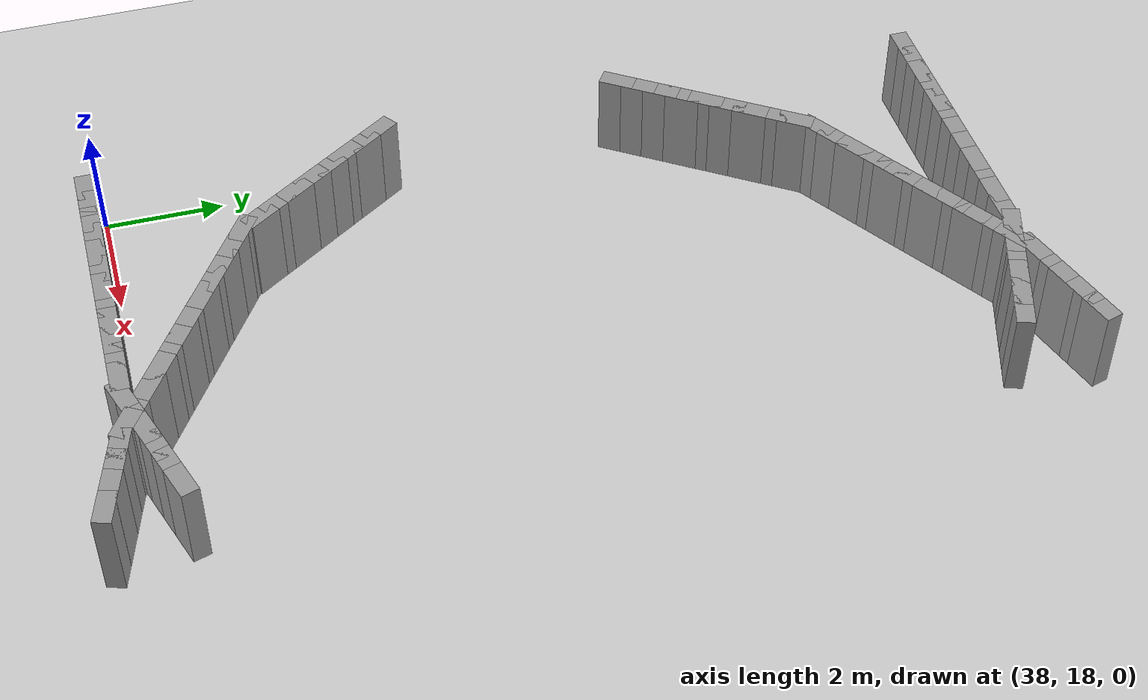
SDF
<sdf version="1.5">
 <world name="test_variable_width">
  <include><uri>model://sun</uri></include>
  <include><uri>model://ground_plane</uri></include>
  <model name="curbL_42">
   <static>true</static>
   <pose>38.609 17.791 0.750 0 0 0.000</pose>
   <link name="link">
    <collision name="col"><geometry><box><size>0.600 0.300 1.500</size></box></geometry></collision>
    <visual name="vis">
     <geometry><box><size>0.600 0.300 1.500</size></box></geometry>
     <material><ambient>0.6 0.6 0.6 1</ambient><diffuse>0.6 0.6 0.6 1</diffuse></material>
    </visual>
   </link>
  </model>
  <model name="curbL_43">
   <static>true</static>
   <pose>39.009 17.791 0.750 0 0 0.000</pose>
   <link name="link">
    <collision name="col"><geometry><box><size>0.600 0.300 1.500</size></box></geometry></collision>
    <visual name="vis">
     <geometry><box><size>0.600 0.300 1.500</size></box></geometry>
     <material><ambient>0.6 0.6 0.6 1</ambient><diffuse>0.6 0.6 0.6 1</diffuse></material>
    </visual>
   </link>
  </model>
  <model name="curbL_44">
   <static>true</static>
   <pose>39.409 17.791 0.750 0 0 0.000</pose>
   <link name="link">
    <collision name="col"><geometry><box><size>0.600 0.300 1.500</size></box></geometry></collision>
    <visual name="vis">
     <geometry><box><size>0.600 0.300 1.500</size></box></geometry>
     <material><ambient>0.6 0.6 0.6 1</ambient><diffuse>0.6 0.6 0.6 1</diffuse></material>
    </visual>
   </link>
  </model>
  <model name="curbL_45">
   <static>true</static>
   <pose>39.809 17.791 0.750 0 0 0.000</pose>
   <link name="link">
    <collision name="col"><geometry><box><size>0.600 0.300 1.500</size></box></geometry></collision>
    <visual name="vis">
     <geometry><box><size>0.600 0.300 1.500</size></box></geometry>
     <material><ambient>0.6 0.6 0.6 1</ambient><diffuse>0.6 0.6 0.6 1</diffuse></material>
    </visual>
   </link>
  </model>
  <model name="curbL_46">
   <static>true</static>
   <pose>40.209 17.791 0.750 0 0 0.000</pose>
   <link name="link">
    <collision name="col"><geometry><box><size>0.600 0.300 1.500</size></box></geometry></collision>
    <visual name="vis">
     <geometry><box><size>0.600 0.300 1.500</size></box></geometry>
     <material><ambient>0.6 0.6 0.6 1</ambient><diffuse>0.6 0.6 0.6 1</diffuse></material>
    </visual>
   </link>
  </model>
  <model name="curbL_47">
   <static>true</static>
   <pose>40.609 17.791 0.750 0 0 0.000</pose>
   <link name="link">
    <collision name="col"><geometry><box><size>0.600 0.300 1.500</size></box></geometry></collision>
    <visual name="vis">
     <geometry><box><size>0.600 0.300 1.500</size></box></geometry>
     <material><ambient>0.6 0.6 0.6 1</ambient><diffuse>0.6 0.6 0.6 1</diffuse></material>
    </visual>
   </link>
  </model>
  <model name="curbL_48">
   <static>true</static>
   <pose>41.009 17.791 0.750 0 0 0.000</pose>
   <link name="link">
    <collision name="col"><geometry><box><size>0.600 0.300 1.500</size></box></geometry></collision>
    <visual name="vis">
     <geometry><box><size>0.600 0.300 1.500</size></box></geometry>
     <material><ambient>0.6 0.6 0.6 1</ambient><diffuse>0.6 0.6 0.6 1</diffuse></material>
    </visual>
   </link>
  </model>
  <model name="curbL_49">
   <static>true</static>
   <pose>41.409 17.791 0.750 0 0 0.000</pose>
   <link name="link">
    <collision name="col"><geometry><box><size>0.600 0.300 1.500</size></box></geometry></collision>
    <visual name="vis">
     <geometry><box><size>0.600 0.300 1.500</size></box></geometry>
     <material><ambient>0.6 0.6 0.6 1</ambient><diffuse>0.6 0.6 0.6 1</diffuse></material>
    </visual>
   </link>
  </model>
  <model name="curbL_50">
   <static>true</static>
   <pose>41.809 17.791 0.750 0 0 0.000</pose>
   <link name="link">
    <collision name="col"><geometry><box><size>0.600 0.300 1.500</size></box></geometry></collision>
    <visual name="vis">
     <geometry><box><size>0.600 0.300 1.500</size></box></geometry>
     <material><ambient>0.6 0.6 0.6 1</ambient><diffuse>0.6 0.6 0.6 1</diffuse></material>
    </visual>
   </link>
  </model>
  <model name="curbL_51">
   <static>true</static>
   <pose>42.209 17.791 0.750 0 0 0.000</pose>
   <link name="link">
    <collision name="col"><geometry><box><size>0.600 0.300 1.500</size></box></geometry></collision>
    <visual name="vis">
     <geometry><box><size>0.600 0.300 1.500</size></box></geometry>
     <material><ambient>0.6 0.6 0.6 1</ambient><diffuse>0.6 0.6 0.6 1</diffuse></material>
    </visual>
   </link>
  </model>
  <model name="curbL_52">
   <static>true</static>
   <pose>42.609 17.791 0.750 0 0 0.000</pose>
   <link name="link">
    <collision name="col"><geometry><box><size>0.600 0.300 1.500</size></box></geometry></collision>
    <visual name="vis">
     <geometry><box><size>0.600 0.300 1.500</size></box></geometry>
     <material><ambient>0.6 0.6 0.6 1</ambient><diffuse>0.6 0.6 0.6 1</diffuse></material>
    </visual>
   </link>
  </model>
  <model name="curbL_53">
   <static>true</static>
   <pose>43.009 17.791 0.750 0 0 0.000</pose>
   <link name="link">
    <collision name="col"><geometry><box><size>0.600 0.300 1.500</size></box></geometry></collision>
    <visual name="vis">
     <geometry><box><size>0.600 0.300 1.500</size></box></geometry>
     <material><ambient>0.6 0.6 0.6 1</ambient><diffuse>0.6 0.6 0.6 1</diffuse></material>
    </visual>
   </link>
  </model>
  <model name="curbL_54">
   <static>true</static>
   <pose>43.408 17.796 0.750 0 0 0.316</pose>
   <link name="link">
    <collision name="col"><geometry><box><size>0.600 0.300 1.500</size></box></geometry></collision>
    <visual name="vis">
     <geometry><box><size>0.600 0.300 1.500</size></box></geometry>
     <material><ambient>0.6 0.6 0.6 1</ambient><diffuse>0.6 0.6 0.6 1</diffuse></material>
    </visual>
   </link>
  </model>
  <model name="curbL_55">
   <static>true</static>
   <pose>43.788 17.920 0.750 0 0 0.316</pose>
   <link name="link">
    <collision name="col"><geometry><box><size>0.600 0.300 1.500</size></box></geometry></collision>
    <visual name="vis">
     <geometry><box><size>0.600 0.300 1.500</size></box></geometry>
     <material><ambient>0.6 0.6 0.6 1</ambient><diffuse>0.6 0.6 0.6 1</diffuse></material>
    </visual>
   </link>
  </model>
  <model name="curbL_56">
   <static>true</static>
   <pose>44.169 18.045 0.750 0 0 0.316</pose>
   <link name="link">
    <collision name="col"><geometry><box><size>0.600 0.300 1.500</size></box></geometry></collision>
    <visual name="vis">
     <geometry><box><size>0.600 0.300 1.500</size></box></geometry>
     <material><ambient>0.6 0.6 0.6 1</ambient><diffuse>0.6 0.6 0.6 1</diffuse></material>
    </visual>
   </link>
  </model>
  <model name="curbL_57">
   <static>true</static>
   <pose>44.549 18.169 0.750 0 0 0.316</pose>
   <link name="link">
    <collision name="col"><geometry><box><size>0.600 0.300 1.500</size></box></geometry></collision>
    <visual name="vis">
     <geometry><box><size>0.600 0.300 1.500</size></box></geometry>
     <material><ambient>0.6 0.6 0.6 1</ambient><diffuse>0.6 0.6 0.6 1</diffuse></material>
    </visual>
   </link>
  </model>
  <model name="curbL_58">
   <static>true</static>
   <pose>44.929 18.293 0.750 0 0 0.316</pose>
   <link name="link">
    <collision name="col"><geometry><box><size>0.600 0.300 1.500</size></box></geometry></collision>
    <visual name="vis">
     <geometry><box><size>0.600 0.300 1.500</size></box></geometry>
     <material><ambient>0.6 0.6 0.6 1</ambient><diffuse>0.6 0.6 0.6 1</diffuse></material>
    </visual>
   </link>
  </model>
  <model name="curbL_59">
   <static>true</static>
   <pose>45.309 18.417 0.750 0 0 0.316</pose>
   <link name="link">
    <collision name="col"><geometry><box><size>0.600 0.300 1.500</size></box></geometry></collision>
    <visual name="vis">
     <geometry><box><size>0.600 0.300 1.500</size></box></geometry>
     <material><ambient>0.6 0.6 0.6 1</ambient><diffuse>0.6 0.6 0.6 1</diffuse></material>
    </visual>
   </link>
  </model>
  <model name="curbL_113">
   <static>true</static>
   <pose>45.394 31.555 0.750 0 0 2.826</pose>
   <link name="link">
    <collision name="col"><geometry><box><size>0.600 0.300 1.500</size></box></geometry></collision>
    <visual name="vis">
     <geometry><box><size>0.600 0.300 1.500</size></box></geometry>
     <material><ambient>0.6 0.6 0.6 1</ambient><diffuse>0.6 0.6 0.6 1</diffuse></material>
    </visual>
   </link>
  </model>
  <model name="curbL_114">
   <static>true</static>
   <pose>45.014 31.679 0.750 0 0 2.826</pose>
   <link name="link">
    <collision name="col"><geometry><box><size>0.600 0.300 1.500</size></box></geometry></collision>
    <visual name="vis">
     <geometry><box><size>0.600 0.300 1.500</size></box></geometry>
     <material><ambient>0.6 0.6 0.6 1</ambient><diffuse>0.6 0.6 0.6 1</diffuse></material>
    </visual>
   </link>
  </model>
  <model name="curbL_115">
   <static>true</static>
   <pose>44.633 31.803 0.750 0 0 2.826</pose>
   <link name="link">
    <collision name="col"><geometry><box><size>0.600 0.300 1.500</size></box></geometry></collision>
    <visual name="vis">
     <geometry><box><size>0.600 0.300 1.500</size></box></geometry>
     <material><ambient>0.6 0.6 0.6 1</ambient><diffuse>0.6 0.6 0.6 1</diffuse></material>
    </visual>
   </link>
  </model>
  <model name="curbL_116">
   <static>true</static>
   <pose>44.253 31.928 0.750 0 0 2.826</pose>
   <link name="link">
    <collision name="col"><geometry><box><size>0.600 0.300 1.500</size></box></geometry></collision>
    <visual name="vis">
     <geometry><box><size>0.600 0.300 1.500</size></box></geometry>
     <material><ambient>0.6 0.6 0.6 1</ambient><diffuse>0.6 0.6 0.6 1</diffuse></material>
    </visual>
   </link>
  </model>
  <model name="curbL_117">
   <static>true</static>
   <pose>43.873 32.052 0.750 0 0 2.826</pose>
   <link name="link">
    <collision name="col"><geometry><box><size>0.600 0.300 1.500</size></box></geometry></collision>
    <visual name="vis">
     <geometry><box><size>0.600 0.300 1.500</size></box></geometry>
     <material><ambient>0.6 0.6 0.6 1</ambient><diffuse>0.6 0.6 0.6 1</diffuse></material>
    </visual>
   </link>
  </model>
  <model name="curbL_118">
   <static>true</static>
   <pose>43.493 32.176 0.750 0 0 2.826</pose>
   <link name="link">
    <collision name="col"><geometry><box><size>0.600 0.300 1.500</size></box></geometry></collision>
    <visual name="vis">
     <geometry><box><size>0.600 0.300 1.500</size></box></geometry>
     <material><ambient>0.6 0.6 0.6 1</ambient><diffuse>0.6 0.6 0.6 1</diffuse></material>
    </visual>
   </link>
  </model>
  <model name="curbL_119">
   <static>true</static>
   <pose>43.098 32.209 0.750 0 0 3.142</pose>
   <link name="link">
    <collision name="col"><geometry><box><size>0.600 0.300 1.500</size></box></geometry></collision>
    <visual name="vis">
     <geometry><box><size>0.600 0.300 1.500</size></box></geometry>
     <material><ambient>0.6 0.6 0.6 1</ambient><diffuse>0.6 0.6 0.6 1</diffuse></material>
    </visual>
   </link>
  </model>
  <model name="curbL_120">
   <static>true</static>
   <pose>42.698 32.209 0.750 0 0 3.142</pose>
   <link name="link">
    <collision name="col"><geometry><box><size>0.600 0.300 1.500</size></box></geometry></collision>
    <visual name="vis">
     <geometry><box><size>0.600 0.300 1.500</size></box></geometry>
     <material><ambient>0.6 0.6 0.6 1</ambient><diffuse>0.6 0.6 0.6 1</diffuse></material>
    </visual>
   </link>
  </model>
  <model name="curbL_121">
   <static>true</static>
   <pose>42.298 32.209 0.750 0 0 3.142</pose>
   <link name="link">
    <collision name="col"><geometry><box><size>0.600 0.300 1.500</size></box></geometry></collision>
    <visual name="vis">
     <geometry><box><size>0.600 0.300 1.500</size></box></geometry>
     <material><ambient>0.6 0.6 0.6 1</ambient><diffuse>0.6 0.6 0.6 1</diffuse></material>
    </visual>
   </link>
  </model>
  <model name="curbL_122">
   <static>true</static>
   <pose>41.898 32.209 0.750 0 0 3.142</pose>
   <link name="link">
    <collision name="col"><geometry><box><size>0.600 0.300 1.500</size></box></geometry></collision>
    <visual name="vis">
     <geometry><box><size>0.600 0.300 1.500</size></box></geometry>
     <material><ambient>0.6 0.6 0.6 1</ambient><diffuse>0.6 0.6 0.6 1</diffuse></material>
    </visual>
   </link>
  </model>
  <model name="curbL_123">
   <static>true</static>
   <pose>41.498 32.209 0.750 0 0 3.142</pose>
   <link name="link">
    <collision name="col"><geometry><box><size>0.600 0.300 1.500</size></box></geometry></collision>
    <visual name="vis">
     <geometry><box><size>0.600 0.300 1.500</size></box></geometry>
     <material><ambient>0.6 0.6 0.6 1</ambient><diffuse>0.6 0.6 0.6 1</diffuse></material>
    </visual>
   </link>
  </model>
  <model name="curbL_124">
   <static>true</static>
   <pose>41.098 32.209 0.750 0 0 3.142</pose>
   <link name="link">
    <collision name="col"><geometry><box><size>0.600 0.300 1.500</size></box></geometry></collision>
    <visual name="vis">
     <geometry><box><size>0.600 0.300 1.500</size></box></geometry>
     <material><ambient>0.6 0.6 0.6 1</ambient><diffuse>0.6 0.6 0.6 1</diffuse></material>
    </visual>
   </link>
  </model>
  <model name="curbL_125">
   <static>true</static>
   <pose>40.698 32.209 0.750 0 0 3.142</pose>
   <link name="link">
    <collision name="col"><geometry><box><size>0.600 0.300 1.500</size></box></geometry></collision>
    <visual name="vis">
     <geometry><box><size>0.600 0.300 1.500</size></box></geometry>
     <material><ambient>0.6 0.6 0.6 1</ambient><diffuse>0.6 0.6 0.6 1</diffuse></material>
    </visual>
   </link>
  </model>
  <model name="curbL_126">
   <static>true</static>
   <pose>40.298 32.209 0.750 0 0 3.142</pose>
   <link name="link">
    <collision name="col"><geometry><box><size>0.600 0.300 1.500</size></box></geometry></collision>
    <visual name="vis">
     <geometry><box><size>0.600 0.300 1.500</size></box></geometry>
     <material><ambient>0.6 0.6 0.6 1</ambient><diffuse>0.6 0.6 0.6 1</diffuse></material>
    </visual>
   </link>
  </model>
  <model name="curbL_127">
   <static>true</static>
   <pose>39.898 32.209 0.750 0 0 3.142</pose>
   <link name="link">
    <collision name="col"><geometry><box><size>0.600 0.300 1.500</size></box></geometry></collision>
    <visual name="vis">
     <geometry><box><size>0.600 0.300 1.500</size></box></geometry>
     <material><ambient>0.6 0.6 0.6 1</ambient><diffuse>0.6 0.6 0.6 1</diffuse></material>
    </visual>
   </link>
  </model>
  <model name="curbL_128">
   <static>true</static>
   <pose>39.498 32.209 0.750 0 0 3.142</pose>
   <link name="link">
    <collision name="col"><geometry><box><size>0.600 0.300 1.500</size></box></geometry></collision>
    <visual name="vis">
     <geometry><box><size>0.600 0.300 1.500</size></box></geometry>
     <material><ambient>0.6 0.6 0.6 1</ambient><diffuse>0.6 0.6 0.6 1</diffuse></material>
    </visual>
   </link>
  </model>
  <model name="curbL_129">
   <static>true</static>
   <pose>39.098 32.209 0.750 0 0 3.142</pose>
   <link name="link">
    <collision name="col"><geometry><box><size>0.600 0.300 1.500</size></box></geometry></collision>
    <visual name="vis">
     <geometry><box><size>0.600 0.300 1.500</size></box></geometry>
     <material><ambient>0.6 0.6 0.6 1</ambient><diffuse>0.6 0.6 0.6 1</diffuse></material>
    </visual>
   </link>
  </model>
  <model name="curbL_130">
   <static>true</static>
   <pose>38.698 32.209 0.750 0 0 3.142</pose>
   <link name="link">
    <collision name="col"><geometry><box><size>0.600 0.300 1.500</size></box></geometry></collision>
    <visual name="vis">
     <geometry><box><size>0.600 0.300 1.500</size></box></geometry>
     <material><ambient>0.6 0.6 0.6 1</ambient><diffuse>0.6 0.6 0.6 1</diffuse></material>
    </visual>
   </link>
  </model>
  <model name="curbR_1">
   <static>true</static>
   <pose>38.306 27.036 0.750 0 0 0.965</pose>
   <link name="link">
    <collision name="col"><geometry><box><size>0.600 0.300 1.500</size></box></geometry></collision>
    <visual name="vis">
     <geometry><box><size>0.600 0.300 1.500</size></box></geometry>
     <material><ambient>0.6 0.6 0.6 1</ambient><diffuse>0.6 0.6 0.6 1</diffuse></material>
    </visual>
   </link>
  </model>
  <model name="curbR_2">
   <static>true</static>
   <pose>38.534 27.365 0.750 0 0 0.965</pose>
   <link name="link">
    <collision name="col"><geometry><box><size>0.600 0.300 1.500</size></box></geometry></collision>
    <visual name="vis">
     <geometry><box><size>0.600 0.300 1.500</size></box></geometry>
     <material><ambient>0.6 0.6 0.6 1</ambient><diffuse>0.6 0.6 0.6 1</diffuse></material>
    </visual>
   </link>
  </model>
  <model name="curbR_3">
   <static>true</static>
   <pose>38.762 27.694 0.750 0 0 0.965</pose>
   <link name="link">
    <collision name="col"><geometry><box><size>0.600 0.300 1.500</size></box></geometry></collision>
    <visual name="vis">
     <geometry><box><size>0.600 0.300 1.500</size></box></geometry>
     <material><ambient>0.6 0.6 0.6 1</ambient><diffuse>0.6 0.6 0.6 1</diffuse></material>
    </visual>
   </link>
  </model>
  <model name="curbR_4">
   <static>true</static>
   <pose>38.990 28.023 0.750 0 0 0.965</pose>
   <link name="link">
    <collision name="col"><geometry><box><size>0.600 0.300 1.500</size></box></geometry></collision>
    <visual name="vis">
     <geometry><box><size>0.600 0.300 1.500</size></box></geometry>
     <material><ambient>0.6 0.6 0.6 1</ambient><diffuse>0.6 0.6 0.6 1</diffuse></material>
    </visual>
   </link>
  </model>
  <model name="curbR_5">
   <static>true</static>
   <pose>39.217 28.352 0.750 0 0 0.965</pose>
   <link name="link">
    <collision name="col"><geometry><box><size>0.600 0.300 1.500</size></box></geometry></collision>
    <visual name="vis">
     <geometry><box><size>0.600 0.300 1.500</size></box></geometry>
     <material><ambient>0.6 0.6 0.6 1</ambient><diffuse>0.6 0.6 0.6 1</diffuse></material>
    </visual>
   </link>
  </model>
  <model name="curbR_6">
   <static>true</static>
   <pose>39.445 28.681 0.750 0 0 0.965</pose>
   <link name="link">
    <collision name="col"><geometry><box><size>0.600 0.300 1.500</size></box></geometry></collision>
    <visual name="vis">
     <geometry><box><size>0.600 0.300 1.500</size></box></geometry>
     <material><ambient>0.6 0.6 0.6 1</ambient><diffuse>0.6 0.6 0.6 1</diffuse></material>
    </visual>
   </link>
  </model>
  <model name="curbR_7">
   <static>true</static>
   <pose>39.673 29.010 0.750 0 0 0.965</pose>
   <link name="link">
    <collision name="col"><geometry><box><size>0.600 0.300 1.500</size></box></geometry></collision>
    <visual name="vis">
     <geometry><box><size>0.600 0.300 1.500</size></box></geometry>
     <material><ambient>0.6 0.6 0.6 1</ambient><diffuse>0.6 0.6 0.6 1</diffuse></material>
    </visual>
   </link>
  </model>
  <model name="curbR_8">
   <static>true</static>
   <pose>39.900 29.339 0.750 0 0 0.965</pose>
   <link name="link">
    <collision name="col"><geometry><box><size>0.600 0.300 1.500</size></box></geometry></collision>
    <visual name="vis">
     <geometry><box><size>0.600 0.300 1.500</size></box></geometry>
     <material><ambient>0.6 0.6 0.6 1</ambient><diffuse>0.6 0.6 0.6 1</diffuse></material>
    </visual>
   </link>
  </model>
  <model name="curbR_9">
   <static>true</static>
   <pose>40.128 29.668 0.750 0 0 0.965</pose>
   <link name="link">
    <collision name="col"><geometry><box><size>0.600 0.300 1.500</size></box></geometry></collision>
    <visual name="vis">
     <geometry><box><size>0.600 0.300 1.500</size></box></geometry>
     <material><ambient>0.6 0.6 0.6 1</ambient><diffuse>0.6 0.6 0.6 1</diffuse></material>
    </visual>
   </link>
  </model>
  <model name="curbR_10">
   <static>true</static>
   <pose>40.399 29.951 0.750 0 0 0.562</pose>
   <link name="link">
    <collision name="col"><geometry><box><size>0.600 0.300 1.500</size></box></geometry></collision>
    <visual name="vis">
     <geometry><box><size>0.600 0.300 1.500</size></box></geometry>
     <material><ambient>0.6 0.6 0.6 1</ambient><diffuse>0.6 0.6 0.6 1</diffuse></material>
    </visual>
   </link>
  </model>
  <model name="curbR_11">
   <static>true</static>
   <pose>40.738 30.164 0.750 0 0 0.562</pose>
   <link name="link">
    <collision name="col"><geometry><box><size>0.600 0.300 1.500</size></box></geometry></collision>
    <visual name="vis">
     <geometry><box><size>0.600 0.300 1.500</size></box></geometry>
     <material><ambient>0.6 0.6 0.6 1</ambient><diffuse>0.6 0.6 0.6 1</diffuse></material>
    </visual>
   </link>
  </model>
  <model name="curbR_12">
   <static>true</static>
   <pose>41.077 30.377 0.750 0 0 0.562</pose>
   <link name="link">
    <collision name="col"><geometry><box><size>0.600 0.300 1.500</size></box></geometry></collision>
    <visual name="vis">
     <geometry><box><size>0.600 0.300 1.500</size></box></geometry>
     <material><ambient>0.6 0.6 0.6 1</ambient><diffuse>0.6 0.6 0.6 1</diffuse></material>
    </visual>
   </link>
  </model>
  <model name="curbR_13">
   <static>true</static>
   <pose>41.415 30.590 0.750 0 0 0.562</pose>
   <link name="link">
    <collision name="col"><geometry><box><size>0.600 0.300 1.500</size></box></geometry></collision>
    <visual name="vis">
     <geometry><box><size>0.600 0.300 1.500</size></box></geometry>
     <material><ambient>0.6 0.6 0.6 1</ambient><diffuse>0.6 0.6 0.6 1</diffuse></material>
    </visual>
   </link>
  </model>
  <model name="curbR_14">
   <static>true</static>
   <pose>41.754 30.803 0.750 0 0 0.562</pose>
   <link name="link">
    <collision name="col"><geometry><box><size>0.600 0.300 1.500</size></box></geometry></collision>
    <visual name="vis">
     <geometry><box><size>0.600 0.300 1.500</size></box></geometry>
     <material><ambient>0.6 0.6 0.6 1</ambient><diffuse>0.6 0.6 0.6 1</diffuse></material>
    </visual>
   </link>
  </model>
  <model name="curbR_15">
   <static>true</static>
   <pose>42.092 31.016 0.750 0 0 0.562</pose>
   <link name="link">
    <collision name="col"><geometry><box><size>0.600 0.300 1.500</size></box></geometry></collision>
    <visual name="vis">
     <geometry><box><size>0.600 0.300 1.500</size></box></geometry>
     <material><ambient>0.6 0.6 0.6 1</ambient><diffuse>0.6 0.6 0.6 1</diffuse></material>
    </visual>
   </link>
  </model>
  <model name="curbR_16">
   <static>true</static>
   <pose>42.431 31.229 0.750 0 0 0.562</pose>
   <link name="link">
    <collision name="col"><geometry><box><size>0.600 0.300 1.500</size></box></geometry></collision>
    <visual name="vis">
     <geometry><box><size>0.600 0.300 1.500</size></box></geometry>
     <material><ambient>0.6 0.6 0.6 1</ambient><diffuse>0.6 0.6 0.6 1</diffuse></material>
    </visual>
   </link>
  </model>
  <model name="curbR_17">
   <static>true</static>
   <pose>42.769 31.442 0.750 0 0 0.562</pose>
   <link name="link">
    <collision name="col"><geometry><box><size>0.600 0.300 1.500</size></box></geometry></collision>
    <visual name="vis">
     <geometry><box><size>0.600 0.300 1.500</size></box></geometry>
     <material><ambient>0.6 0.6 0.6 1</ambient><diffuse>0.6 0.6 0.6 1</diffuse></material>
    </visual>
   </link>
  </model>
  <model name="curbR_18">
   <static>true</static>
   <pose>43.108 31.655 0.750 0 0 0.562</pose>
   <link name="link">
    <collision name="col"><geometry><box><size>0.600 0.300 1.500</size></box></geometry></collision>
    <visual name="vis">
     <geometry><box><size>0.600 0.300 1.500</size></box></geometry>
     <material><ambient>0.6 0.6 0.6 1</ambient><diffuse>0.6 0.6 0.6 1</diffuse></material>
    </visual>
   </link>
  </model>
  <model name="curbR_19">
   <static>true</static>
   <pose>43.446 31.868 0.750 0 0 0.562</pose>
   <link name="link">
    <collision name="col"><geometry><box><size>0.600 0.300 1.500</size></box></geometry></collision>
    <visual name="vis">
     <geometry><box><size>0.600 0.300 1.500</size></box></geometry>
     <material><ambient>0.6 0.6 0.6 1</ambient><diffuse>0.6 0.6 0.6 1</diffuse></material>
    </visual>
   </link>
  </model>
  <model name="curbR_20">
   <static>true</static>
   <pose>43.785 32.081 0.750 0 0 0.562</pose>
   <link name="link">
    <collision name="col"><geometry><box><size>0.600 0.300 1.500</size></box></geometry></collision>
    <visual name="vis">
     <geometry><box><size>0.600 0.300 1.500</size></box></geometry>
     <material><ambient>0.6 0.6 0.6 1</ambient><diffuse>0.6 0.6 0.6 1</diffuse></material>
    </visual>
   </link>
  </model>
  <model name="curbR_21">
   <static>true</static>
   <pose>44.125 32.291 0.750 0 0 0.290</pose>
   <link name="link">
    <collision name="col"><geometry><box><size>0.600 0.300 1.500</size></box></geometry></collision>
    <visual name="vis">
     <geometry><box><size>0.600 0.300 1.500</size></box></geometry>
     <material><ambient>0.6 0.6 0.6 1</ambient><diffuse>0.6 0.6 0.6 1</diffuse></material>
    </visual>
   </link>
  </model>
  <model name="curbR_22">
   <static>true</static>
   <pose>44.508 32.406 0.750 0 0 0.290</pose>
   <link name="link">
    <collision name="col"><geometry><box><size>0.600 0.300 1.500</size></box></geometry></collision>
    <visual name="vis">
     <geometry><box><size>0.600 0.300 1.500</size></box></geometry>
     <material><ambient>0.6 0.6 0.6 1</ambient><diffuse>0.6 0.6 0.6 1</diffuse></material>
    </visual>
   </link>
  </model>
  <model name="curbR_23">
   <static>true</static>
   <pose>44.891 32.520 0.750 0 0 0.290</pose>
   <link name="link">
    <collision name="col"><geometry><box><size>0.600 0.300 1.500</size></box></geometry></collision>
    <visual name="vis">
     <geometry><box><size>0.600 0.300 1.500</size></box></geometry>
     <material><ambient>0.6 0.6 0.6 1</ambient><diffuse>0.6 0.6 0.6 1</diffuse></material>
    </visual>
   </link>
  </model>
  <model name="curbR_24">
   <static>true</static>
   <pose>45.275 32.635 0.750 0 0 0.290</pose>
   <link name="link">
    <collision name="col"><geometry><box><size>0.600 0.300 1.500</size></box></geometry></collision>
    <visual name="vis">
     <geometry><box><size>0.600 0.300 1.500</size></box></geometry>
     <material><ambient>0.6 0.6 0.6 1</ambient><diffuse>0.6 0.6 0.6 1</diffuse></material>
    </visual>
   </link>
  </model>
  <model name="curbR_25">
   <static>true</static>
   <pose>45.658 32.749 0.750 0 0 0.290</pose>
   <link name="link">
    <collision name="col"><geometry><box><size>0.600 0.300 1.500</size></box></geometry></collision>
    <visual name="vis">
     <geometry><box><size>0.600 0.300 1.500</size></box></geometry>
     <material><ambient>0.6 0.6 0.6 1</ambient><diffuse>0.6 0.6 0.6 1</diffuse></material>
    </visual>
   </link>
  </model>
  <model name="curbR_143">
   <static>true</static>
   <pose>45.516 17.293 0.750 0 0 2.852</pose>
   <link name="link">
    <collision name="col"><geometry><box><size>0.600 0.300 1.500</size></box></geometry></collision>
    <visual name="vis">
     <geometry><box><size>0.600 0.300 1.500</size></box></geometry>
     <material><ambient>0.6 0.6 0.6 1</ambient><diffuse>0.6 0.6 0.6 1</diffuse></material>
    </visual>
   </link>
  </model>
  <model name="curbR_144">
   <static>true</static>
   <pose>45.133 17.408 0.750 0 0 2.852</pose>
   <link name="link">
    <collision name="col"><geometry><box><size>0.600 0.300 1.500</size></box></geometry></collision>
    <visual name="vis">
     <geometry><box><size>0.600 0.300 1.500</size></box></geometry>
     <material><ambient>0.6 0.6 0.6 1</ambient><diffuse>0.6 0.6 0.6 1</diffuse></material>
    </visual>
   </link>
  </model>
  <model name="curbR_145">
   <static>true</static>
   <pose>44.750 17.522 0.750 0 0 2.852</pose>
   <link name="link">
    <collision name="col"><geometry><box><size>0.600 0.300 1.500</size></box></geometry></collision>
    <visual name="vis">
     <geometry><box><size>0.600 0.300 1.500</size></box></geometry>
     <material><ambient>0.6 0.6 0.6 1</ambient><diffuse>0.6 0.6 0.6 1</diffuse></material>
    </visual>
   </link>
  </model>
  <model name="curbR_146">
   <static>true</static>
   <pose>44.367 17.636 0.750 0 0 2.852</pose>
   <link name="link">
    <collision name="col"><geometry><box><size>0.600 0.300 1.500</size></box></geometry></collision>
    <visual name="vis">
     <geometry><box><size>0.600 0.300 1.500</size></box></geometry>
     <material><ambient>0.6 0.6 0.6 1</ambient><diffuse>0.6 0.6 0.6 1</diffuse></material>
    </visual>
   </link>
  </model>
  <model name="curbR_147">
   <static>true</static>
   <pose>43.999 17.785 0.750 0 0 2.580</pose>
   <link name="link">
    <collision name="col"><geometry><box><size>0.600 0.300 1.500</size></box></geometry></collision>
    <visual name="vis">
     <geometry><box><size>0.600 0.300 1.500</size></box></geometry>
     <material><ambient>0.6 0.6 0.6 1</ambient><diffuse>0.6 0.6 0.6 1</diffuse></material>
    </visual>
   </link>
  </model>
  <model name="curbR_148">
   <static>true</static>
   <pose>43.660 17.998 0.750 0 0 2.580</pose>
   <link name="link">
    <collision name="col"><geometry><box><size>0.600 0.300 1.500</size></box></geometry></collision>
    <visual name="vis">
     <geometry><box><size>0.600 0.300 1.500</size></box></geometry>
     <material><ambient>0.6 0.6 0.6 1</ambient><diffuse>0.6 0.6 0.6 1</diffuse></material>
    </visual>
   </link>
  </model>
  <model name="curbR_149">
   <static>true</static>
   <pose>43.322 18.211 0.750 0 0 2.580</pose>
   <link name="link">
    <collision name="col"><geometry><box><size>0.600 0.300 1.500</size></box></geometry></collision>
    <visual name="vis">
     <geometry><box><size>0.600 0.300 1.500</size></box></geometry>
     <material><ambient>0.6 0.6 0.6 1</ambient><diffuse>0.6 0.6 0.6 1</diffuse></material>
    </visual>
   </link>
  </model>
  <model name="curbR_150">
   <static>true</static>
   <pose>42.983 18.424 0.750 0 0 2.580</pose>
   <link name="link">
    <collision name="col"><geometry><box><size>0.600 0.300 1.500</size></box></geometry></collision>
    <visual name="vis">
     <geometry><box><size>0.600 0.300 1.500</size></box></geometry>
     <material><ambient>0.6 0.6 0.6 1</ambient><diffuse>0.6 0.6 0.6 1</diffuse></material>
    </visual>
   </link>
  </model>
  <model name="curbR_151">
   <static>true</static>
   <pose>42.644 18.637 0.750 0 0 2.580</pose>
   <link name="link">
    <collision name="col"><geometry><box><size>0.600 0.300 1.500</size></box></geometry></collision>
    <visual name="vis">
     <geometry><box><size>0.600 0.300 1.500</size></box></geometry>
     <material><ambient>0.6 0.6 0.6 1</ambient><diffuse>0.6 0.6 0.6 1</diffuse></material>
    </visual>
   </link>
  </model>
  <model name="curbR_152">
   <static>true</static>
   <pose>42.306 18.850 0.750 0 0 2.580</pose>
   <link name="link">
    <collision name="col"><geometry><box><size>0.600 0.300 1.500</size></box></geometry></collision>
    <visual name="vis">
     <geometry><box><size>0.600 0.300 1.500</size></box></geometry>
     <material><ambient>0.6 0.6 0.6 1</ambient><diffuse>0.6 0.6 0.6 1</diffuse></material>
    </visual>
   </link>
  </model>
  <model name="curbR_153">
   <static>true</static>
   <pose>41.967 19.063 0.750 0 0 2.580</pose>
   <link name="link">
    <collision name="col"><geometry><box><size>0.600 0.300 1.500</size></box></geometry></collision>
    <visual name="vis">
     <geometry><box><size>0.600 0.300 1.500</size></box></geometry>
     <material><ambient>0.6 0.6 0.6 1</ambient><diffuse>0.6 0.6 0.6 1</diffuse></material>
    </visual>
   </link>
  </model>
  <model name="curbR_154">
   <static>true</static>
   <pose>41.629 19.276 0.750 0 0 2.580</pose>
   <link name="link">
    <collision name="col"><geometry><box><size>0.600 0.300 1.500</size></box></geometry></collision>
    <visual name="vis">
     <geometry><box><size>0.600 0.300 1.500</size></box></geometry>
     <material><ambient>0.6 0.6 0.6 1</ambient><diffuse>0.6 0.6 0.6 1</diffuse></material>
    </visual>
   </link>
  </model>
  <model name="curbR_155">
   <static>true</static>
   <pose>41.290 19.489 0.750 0 0 2.580</pose>
   <link name="link">
    <collision name="col"><geometry><box><size>0.600 0.300 1.500</size></box></geometry></collision>
    <visual name="vis">
     <geometry><box><size>0.600 0.300 1.500</size></box></geometry>
     <material><ambient>0.6 0.6 0.6 1</ambient><diffuse>0.6 0.6 0.6 1</diffuse></material>
    </visual>
   </link>
  </model>
  <model name="curbR_156">
   <static>true</static>
   <pose>40.952 19.702 0.750 0 0 2.580</pose>
   <link name="link">
    <collision name="col"><geometry><box><size>0.600 0.300 1.500</size></box></geometry></collision>
    <visual name="vis">
     <geometry><box><size>0.600 0.300 1.500</size></box></geometry>
     <material><ambient>0.6 0.6 0.6 1</ambient><diffuse>0.6 0.6 0.6 1</diffuse></material>
    </visual>
   </link>
  </model>
  <model name="curbR_157">
   <static>true</static>
   <pose>40.613 19.915 0.750 0 0 2.580</pose>
   <link name="link">
    <collision name="col"><geometry><box><size>0.600 0.300 1.500</size></box></geometry></collision>
    <visual name="vis">
     <geometry><box><size>0.600 0.300 1.500</size></box></geometry>
     <material><ambient>0.6 0.6 0.6 1</ambient><diffuse>0.6 0.6 0.6 1</diffuse></material>
    </visual>
   </link>
  </model>
  <model name="curbR_158">
   <static>true</static>
   <pose>40.274 20.128 0.750 0 0 2.580</pose>
   <link name="link">
    <collision name="col"><geometry><box><size>0.600 0.300 1.500</size></box></geometry></collision>
    <visual name="vis">
     <geometry><box><size>0.600 0.300 1.500</size></box></geometry>
     <material><ambient>0.6 0.6 0.6 1</ambient><diffuse>0.6 0.6 0.6 1</diffuse></material>
    </visual>
   </link>
  </model>
  <model name="curbR_159">
   <static>true</static>
   <pose>40.044 20.454 0.750 0 0 2.176</pose>
   <link name="link">
    <collision name="col"><geometry><box><size>0.600 0.300 1.500</size></box></geometry></collision>
    <visual name="vis">
     <geometry><box><size>0.600 0.300 1.500</size></box></geometry>
     <material><ambient>0.6 0.6 0.6 1</ambient><diffuse>0.6 0.6 0.6 1</diffuse></material>
    </visual>
   </link>
  </model>
  <model name="curbR_160">
   <static>true</static>
   <pose>39.816 20.783 0.750 0 0 2.176</pose>
   <link name="link">
    <collision name="col"><geometry><box><size>0.600 0.300 1.500</size></box></geometry></collision>
    <visual name="vis">
     <geometry><box><size>0.600 0.300 1.500</size></box></geometry>
     <material><ambient>0.6 0.6 0.6 1</ambient><diffuse>0.6 0.6 0.6 1</diffuse></material>
    </visual>
   </link>
  </model>
  <model name="curbR_161">
   <static>true</static>
   <pose>39.589 21.112 0.750 0 0 2.176</pose>
   <link name="link">
    <collision name="col"><geometry><box><size>0.600 0.300 1.500</size></box></geometry></collision>
    <visual name="vis">
     <geometry><box><size>0.600 0.300 1.500</size></box></geometry>
     <material><ambient>0.6 0.6 0.6 1</ambient><diffuse>0.6 0.6 0.6 1</diffuse></material>
    </visual>
   </link>
  </model>
  <model name="curbR_162">
   <static>true</static>
   <pose>39.361 21.441 0.750 0 0 2.176</pose>
   <link name="link">
    <collision name="col"><geometry><box><size>0.600 0.300 1.500</size></box></geometry></collision>
    <visual name="vis">
     <geometry><box><size>0.600 0.300 1.500</size></box></geometry>
     <material><ambient>0.6 0.6 0.6 1</ambient><diffuse>0.6 0.6 0.6 1</diffuse></material>
    </visual>
   </link>
  </model>
  <model name="curbR_163">
   <static>true</static>
   <pose>39.133 21.769 0.750 0 0 2.176</pose>
   <link name="link">
    <collision name="col"><geometry><box><size>0.600 0.300 1.500</size></box></geometry></collision>
    <visual name="vis">
     <geometry><box><size>0.600 0.300 1.500</size></box></geometry>
     <material><ambient>0.6 0.6 0.6 1</ambient><diffuse>0.6 0.6 0.6 1</diffuse></material>
    </visual>
   </link>
  </model>
  <model name="curbR_164">
   <static>true</static>
   <pose>38.905 22.098 0.750 0 0 2.176</pose>
   <link name="link">
    <collision name="col"><geometry><box><size>0.600 0.300 1.500</size></box></geometry></collision>
    <visual name="vis">
     <geometry><box><size>0.600 0.300 1.500</size></box></geometry>
     <material><ambient>0.6 0.6 0.6 1</ambient><diffuse>0.6 0.6 0.6 1</diffuse></material>
    </visual>
   </link>
  </model>
  <model name="curbR_165">
   <static>true</static>
   <pose>38.678 22.427 0.750 0 0 2.176</pose>
   <link name="link">
    <collision name="col"><geometry><box><size>0.600 0.300 1.500</size></box></geometry></collision>
    <visual name="vis">
     <geometry><box><size>0.600 0.300 1.500</size></box></geometry>
     <material><ambient>0.6 0.6 0.6 1</ambient><diffuse>0.6 0.6 0.6 1</diffuse></material>
    </visual>
   </link>
  </model>
  <model name="curbR_166">
   <static>true</static>
   <pose>38.450 22.756 0.750 0 0 2.176</pose>
   <link name="link">
    <collision name="col"><geometry><box><size>0.600 0.300 1.500</size></box></geometry></collision>
    <visual name="vis">
     <geometry><box><size>0.600 0.300 1.500</size></box></geometry>
     <material><ambient>0.6 0.6 0.6 1</ambient><diffuse>0.6 0.6 0.6 1</diffuse></material>
    </visual>
   </link>
  </model>
 </world>
</sdf>
